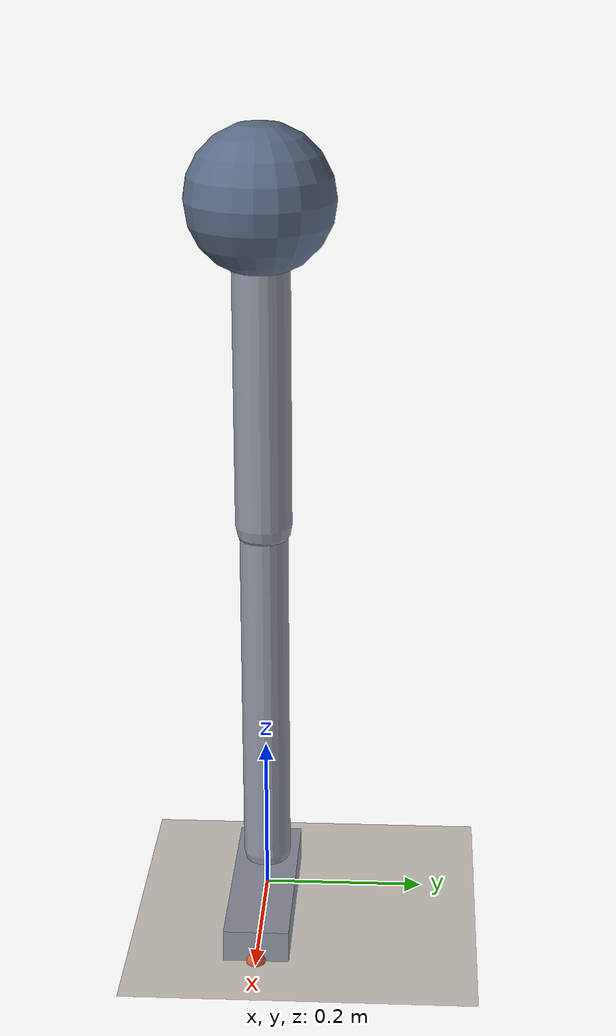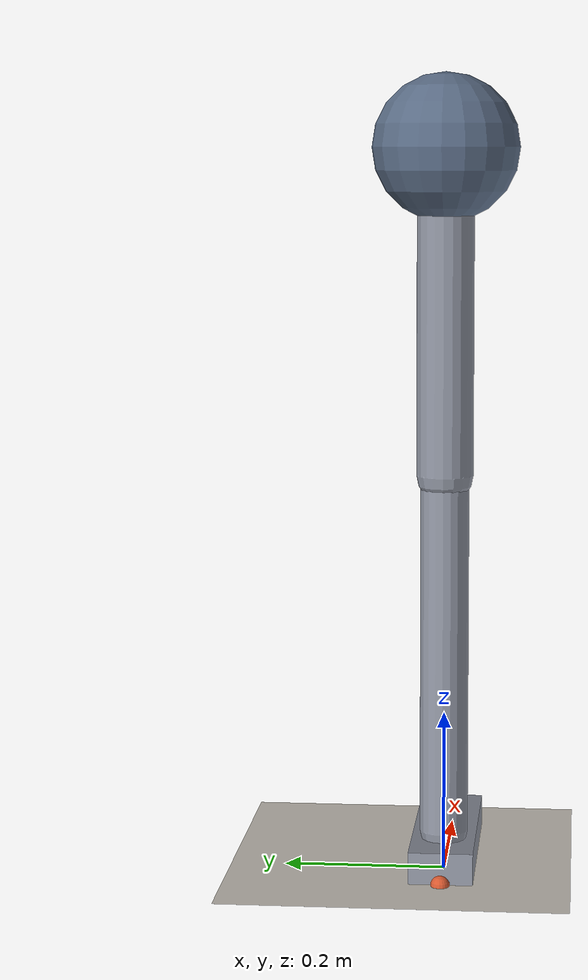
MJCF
<mujoco model="prosthetic_leg_2d">

  <!-- 1 ms physics step. Euler is predictable when we inject our own forces. -->
  <option timestep="0.001" gravity="0 0 -9.81" integrator="Euler"/>

  <default>
    <!-- contype/conaffinity = 0 means NOTHING collides. We supply ground forces ourselves.
         To fall back on MuJoCo's native contact, set these to 1 on foot_geom and floor. -->
    <geom contype="0" conaffinity="0" rgba="0.55 0.57 0.62 1"/>
  </default>

  <worldbody>
    <light pos="0 0 2.5" dir="0 0 -1"/>
    <camera name="side" pos="0.3 -2.2 0.6" xyaxes="1 0 0 0 0 1"/>

    <!-- Visual only. Its z position is moved at render time to show the dent. -->
    <geom name="floor" type="plane" size="3 1 0.1" pos="0 0 0" rgba="0.82 0.80 0.76 1"/>

    <!-- ================= FLOATING BASE: THE FOOT (3 passive DOF) ================= -->
    <!-- Nothing holds this up except the forces we apply. It can fall over. -->
    <body name="foot" pos="0 0 0.05">
      <joint name="foot_x"     type="slide" axis="1 0 0"/>
      <joint name="foot_z"     type="slide" axis="0 0 1"/>
      <joint name="foot_pitch" type="hinge" axis="0 1 0"/>

      <!-- Foot origin sits at the ankle. Heel is behind it, toe ahead. -->
      <geom name="foot_geom" type="box" size="0.13 0.04 0.02"
            pos="0.06 0 -0.03" mass="1.0"/>

      <!-- The two contact points. Ground forces are applied HERE. -->
      <site name="heel_site" pos="-0.07 0 -0.05" size="0.012" rgba="0.85 0.35 0.19 1"/>
      <site name="toe_site"  pos="0.19 0 -0.05" size="0.012" rgba="0.85 0.35 0.19 1"/>

      <!-- ================= THE ANKLE: THE ONLY MOTOR ================= -->
      <body name="shank" pos="0 0 0">
        <joint name="ankle_hinge" type="hinge" axis="0 1 0"
               range="-0.349 0.349" damping="0.1"/>
        <geom name="shank_geom" type="capsule" fromto="0 0 0 0 0 0.45"
              size="0.030" mass="2.0"/>

        <!-- ================= PYLON: PASSIVE SPRING-DAMPER (1 DOF) ================= -->
        <body name="upper" pos="0 0 0.45">
          <joint name="pylon_slide" type="slide" axis="0 0 1" range="-0.06 0.005"
                 stiffness="120000" damping="800" springref="0"/>
          <geom name="upper_geom" type="capsule" fromto="0 0 0 0 0 0.40"
                size="0.035" mass="0.5"/>

          <!-- ================= BODY MASS ================= -->
          <body name="body_mass" pos="0 0 0.40">
            <geom name="body_geom" type="sphere" size="0.09" mass="70.0"
                  rgba="0.35 0.42 0.52 1"/>
          </body>
        </body>
      </body>
    </body>
  </worldbody>

  <actuator>
    <!-- We compute the impedance torque in Python and write it to data.ctrl[0]. -->
    <motor name="ankle_motor" joint="ankle_hinge" gear="1" ctrlrange="-150 150"/>
  </actuator>

  <sensor>
    <jointpos  name="ankle_pos" joint="ankle_hinge"/>
    <jointvel  name="ankle_vel" joint="ankle_hinge"/>
    <jointpos  name="pylon_pos" joint="pylon_slide"/>
    <framepos  name="heel_pos" objtype="site" objname="heel_site"/>
    <framepos  name="toe_pos"  objtype="site" objname="toe_site"/>
  </sensor>

</mujoco>
